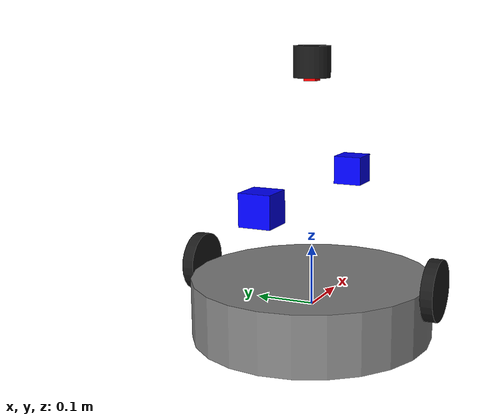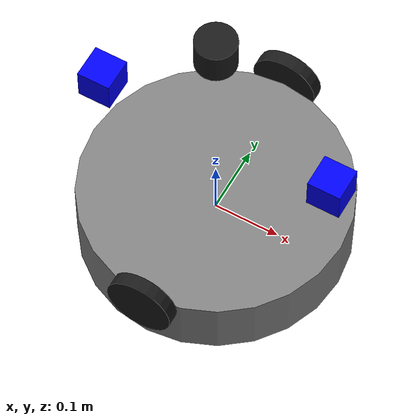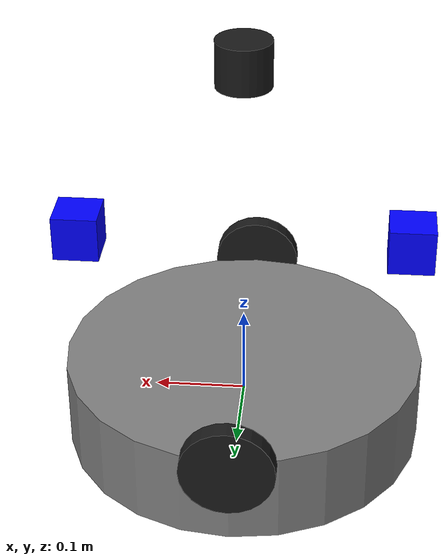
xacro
<?xml version="1.0"?>
<robot xmlns:xacro="http://www.ros.org/wiki/xacro" name="my_robot">

  <!-- Properties -->
  <xacro:property name="PI" value="3.1415926535897931"/>

  <xacro:property name="base_radius" value="0.2"/>      <!-- Base cylinder radius -->
  <xacro:property name="base_height" value="0.1"/>      <!-- Base cylinder height -->

  <xacro:property name="wheel_radius" value="0.05"/>     <!-- Driving wheel radius -->
  <xacro:property name="wheel_thickness" value="0.02"/>   <!-- Driving wheel thickness (length of cylinder) -->
  <xacro:property name="wheel_axle_height_from_ground" value="0.10"/> <!-- Axle Z position from ground -->
  <!-- Assuming base_link bottom is at ground level (z=0 in world), its origin (center) is at base_height/2 from ground. -->
  <!-- Wheel joint Z offset from base_link origin: -->
  <xacro:property name="wheel_joint_z_offset" value="${wheel_axle_height_from_ground - base_height/2.0}"/>
  <!-- Wheel joint Y offset from base_link center to wheel center -->
  <xacro:property name="wheel_joint_y_offset" value="${base_radius + wheel_thickness/2.0}"/> <!-- Place wheel center just outside base radius -->
  <xacro:property name="wheel_separation" value="${2 * wheel_joint_y_offset}"/>
  <xacro:property name="wheel_diameter" value="${2 * wheel_radius}"/>

  <xacro:property name="caster_radius" value="0.025"/>    <!-- Omni-caster wheel radius -->
  <xacro:property name="caster_offset_x" value="${base_radius - caster_radius}"/> <!-- Position caster slightly inside base radius edge -->
  <!-- Caster Z position: want it to support the robot at the same height as driving wheels -->
  <!-- Bottom of driving wheel is at wheel_axle_height_from_ground - wheel_radius = 0.10 - 0.05 = 0.05m from ground -->
  <!-- So caster bottom should also be at 0.05m from ground. Caster center z = 0.05 (from ground) + caster_radius -->
  <!-- Caster Z relative to base_link origin: (0.05 + caster_radius) - base_height/2.0 -->
  <xacro:property name="caster_joint_z_offset" value="${(wheel_axle_height_from_ground - wheel_radius + caster_radius) - base_height/2.0}"/>

  <xacro:property name="camera_size" value="0.05"/>
  <xacro:property name="camera_x_offset" value="0.18"/> <!-- Forward from base center -->
  <xacro:property name="camera_z_offset" value="0.2"/>  <!-- Above base_link origin, as per example -->

  <xacro:property name="lidar_z_offset" value="0.4"/>   <!-- Above base_link origin -->
  <xacro:property name="imu_z_offset" value="0.38"/>    <!-- Above base_link origin -->

  <!-- Materials -->
  <material name="grey">
    <color rgba="0.5 0.5 0.5 1"/>
  </material>
  <material name="black">
    <color rgba="0.1 0.1 0.1 1"/>
  </material>
  <material name="blue">
    <color rgba="0 0 1 1"/>
  </material>
  <material name="red">
    <color rgba="1 0 0 1"/>
  </material>

  <!-- Base Link (origin at geometric center of cylinder) -->
  <link name="base_link">
    <visual>
      <geometry>
        <cylinder radius="${base_radius}" length="${base_height}"/>
      </geometry>
      <material name="grey"/>
    </visual>
    <collision>
      <geometry>
        <cylinder radius="${base_radius}" length="${base_height}"/>
      </geometry>
    </collision>
    <inertial>
      <mass value="5.0"/> <!-- Approximate mass -->
      <origin xyz="0 0 0" rpy="0 0 0"/>
      <inertia ixx="0.0383" ixy="0" ixz="0" iyy="0.0383" iyz="0" izz="0.05"/> <!-- Approx for cylinder m=5, r=0.2, h=0.1 -->
    </inertial>
  </link>

  <!-- Left Drive Wheel -->
  <link name="wheel_left_link">
    <visual>
      <origin rpy="${PI/2} 0 0"/> <!-- Rotate cylinder to align correctly -->
      <geometry>
        <cylinder radius="${wheel_radius}" length="${wheel_thickness}"/>
      </geometry>
      <material name="black"/>
    </visual>
    <collision>
      <origin rpy="${PI/2} 0 0"/>
      <geometry>
        <cylinder radius="${wheel_radius}" length="${wheel_thickness}"/>
      </geometry>
    </collision>
    <inertial>
      <mass value="0.5"/> <!-- Approximate mass -->
      <origin xyz="0 0 0" rpy="${PI/2} 0 0"/> <!-- Origin relative to link frame, consider rotation for inertia tensor -->
      <inertia ixx="0.001" ixy="0" ixz="0" iyy="0.0005" iyz="0" izz="0.001"/> <!-- Approx for cylinder m=0.5, r=0.05, h=0.02, axis of rotation is Y -->
    </inertial>
  </link>

  <joint name="wheel_left_joint" type="continuous">
    <parent link="base_link"/>
    <child link="wheel_left_link"/>
    <origin xyz="0 ${wheel_joint_y_offset} ${wheel_joint_z_offset}" rpy="0 0 0"/>
    <axis xyz="0 1 0"/> <!-- Rotate around Y-axis of the joint frame -->
  </joint>

  <!-- Right Drive Wheel -->
  <link name="wheel_right_link">
    <visual>
      <origin rpy="${PI/2} 0 0"/>
      <geometry>
        <cylinder radius="${wheel_radius}" length="${wheel_thickness}"/>
      </geometry>
      <material name="black"/>
    </visual>
    <collision>
      <origin rpy="${PI/2} 0 0"/>
      <geometry>
        <cylinder radius="${wheel_radius}" length="${wheel_thickness}"/>
      </geometry>
    </collision>
    <inertial>
      <mass value="0.5"/>
      <origin xyz="0 0 0" rpy="${PI/2} 0 0"/>
      <inertia ixx="0.001" ixy="0" ixz="0" iyy="0.0005" iyz="0" izz="0.001"/>
    </inertial>
  </link>

  <joint name="wheel_right_joint" type="continuous">
    <parent link="base_link"/>
    <child link="wheel_right_link"/>
    <origin xyz="0 -${wheel_joint_y_offset} ${wheel_joint_z_offset}" rpy="0 0 0"/>
    <axis xyz="0 1 0"/>
  </joint>

  <!-- Front Caster Wheel (simple sphere for visual) -->
  <link name="caster_front_link">
    <visual>
      <geometry>
        <sphere radius="${caster_radius}"/>
      </geometry>
      <material name="red"/>
    </visual>
    <collision>
      <geometry>
        <sphere radius="${caster_radius}"/>
      </geometry>
    </collision>
    <inertial>
      <mass value="0.1"/>
      <inertia ixx="0.0001" ixy="0" ixz="0" iyy="0.0001" iyz="0" izz="0.0001"/>
    </inertial>
  </link>

  <joint name="caster_front_joint" type="fixed">
    <parent link="base_link"/>
    <child link="caster_front_link"/>
    <origin xyz="${caster_offset_x} 0 ${caster_joint_z_offset}" rpy="0 0 0"/>
  </joint>

  <!-- Rear Caster Wheel (simple sphere for visual) -->
  <link name="caster_rear_link">
    <visual>
      <geometry>
        <sphere radius="${caster_radius}"/>
      </geometry>
      <material name="red"/>
    </visual>
    <collision>
      <geometry>
        <sphere radius="${caster_radius}"/>
      </geometry>
    </collision>
    <inertial>
      <mass value="0.1"/>
      <inertia ixx="0.0001" ixy="0" ixz="0" iyy="0.0001" iyz="0" izz="0.0001"/>
    </inertial>
  </link>

  <joint name="caster_rear_joint" type="fixed">
    <parent link="base_link"/>
    <child link="caster_rear_link"/>
    <origin xyz="-${caster_offset_x} 0 ${caster_joint_z_offset}" rpy="0 0 0"/>
  </joint>

  <!-- Front Camera -->
  <link name="camera_front_link">
    <visual>
      <geometry>
        <box size="${camera_size} ${camera_size} ${camera_size}"/>
      </geometry>
      <material name="blue"/>
    </visual>
    <!-- Collision and inertial omitted for simplicity for now -->
  </link>

  <joint name="camera_front_joint" type="fixed">
    <parent link="base_link"/>
    <child link="camera_front_link"/>
    <origin xyz="${camera_x_offset} 0 ${camera_z_offset}" rpy="0 0 0"/>
  </joint>

  <!-- Rear Camera -->
  <link name="camera_rear_link">
    <visual>
      <geometry>
        <box size="${camera_size} ${camera_size} ${camera_size}"/>
      </geometry>
      <material name="blue"/>
    </visual>
  </link>

  <joint name="camera_rear_joint" type="fixed">
    <parent link="base_link"/>
    <child link="camera_rear_link"/>
    <origin xyz="-${camera_x_offset} 0 ${camera_z_offset}" rpy="0 0 ${PI}"/> <!-- Rotated 180 deg to face rear -->
  </joint>

  <!-- LiDAR -->
  <link name="lidar_link">
    <visual> <!-- Optional visual for LiDAR -->
      <geometry>
        <cylinder radius="0.03" length="0.05"/>
      </geometry>
      <material name="black"/>
    </visual>
  </link>

  <joint name="lidar_joint" type="fixed">
    <parent link="base_link"/>
    <child link="lidar_link"/>
    <origin xyz="0 0 ${lidar_z_offset}" rpy="0 0 0"/>
  </joint>

  <!-- IMU -->
  <link name="imu_link">
    <!-- IMU often has no visual or a very small one -->
     <visual>
      <geometry>
        <box size="0.02 0.02 0.02"/>
      </geometry>
      <material name="red"/>
    </visual>
  </link>

  <joint name="imu_joint" type="fixed">
    <parent link="base_link"/>
    <child link="imu_link"/>
    <origin xyz="0 0 ${imu_z_offset}" rpy="0 0 0"/>
  </joint>

  <!-- Gazebo Plugins -->

  <!-- Differential Drive -->
  <gazebo>
    <plugin name="differential_drive_controller" filename="libgazebo_ros_diff_drive.so">
      <ros>
        <namespace>/</namespace>
      </ros>
      <left_joint>wheel_left_joint</left_joint>
      <right_joint>wheel_right_joint</right_joint>
      <wheel_separation>${wheel_separation}</wheel_separation>
      <wheel_diameter>${wheel_diameter}</wheel_diameter>
      <max_wheel_torque>20</max_wheel_torque>
      <max_wheel_acceleration>1.0</max_wheel_acceleration>
      <odometry_frame>odom</odometry_frame>
      <robot_base_frame>base_link</robot_base_frame>
      <publish_odom>true</publish_odom>
      <publish_odom_tf>true</publish_odom_tf>
      <publish_wheel_tf>false</publish_wheel_tf> <!-- Often handled by robot_state_publisher -->
    </plugin>
  </gazebo>

  <!-- Front Depth Camera -->
  <gazebo reference="camera_front_link">
    <sensor type="depth" name="front_depth_camera_sensor">
      <always_on>true</always_on>
      <update_rate>15.0</update_rate>
      <camera name="camera_front">
        <horizontal_fov>${60.0*PI/180.0}</horizontal_fov>
        <image>
          <width>640</width>
          <height>480</height>
          <format>R8G8B8</format>
        </image>
        <clip>
          <near>0.1</near>
          <far>10.0</far>
        </clip>
      </camera>
      <plugin name="front_camera_plugin" filename="libgazebo_ros_depth_camera.so">
        <ros>
            <namespace>/my_robot</namespace>
            <remapping>image_raw:=camera_front/image_raw</remapping>
            <remapping>camera_info:=camera_front/camera_info</remapping>
            <remapping>points:=camera_front/points</remapping>
        </ros>
        <camera_name>camera_front</camera_name>
        <frame_name>camera_front_link_optical</frame_name>
        <hack_baseline>0.07</hack_baseline>
        <min_depth>0.1</min_depth>
        <max_depth>10.0</max_depth>
        <point_cloud_cutoff>0.1</point_cloud_cutoff>
        <point_cloud_cutoff_max>10.0</point_cloud_cutoff_max>
      </plugin>
    </sensor>
    <!-- Add optical frame joint -->
    <joint name="camera_front_optical_joint" type="fixed">
      <parent link="camera_front_link" />
      <child link="camera_front_link_optical" />
      <origin xyz="0 0 0" rpy="${-PI/2} 0 ${-PI/2}"/>
    </joint>
    <link name="camera_front_link_optical"/>
  </gazebo>

  <!-- Rear Depth Camera -->
  <gazebo reference="camera_rear_link">
    <sensor type="depth" name="rear_depth_camera_sensor">
      <always_on>true</always_on>
      <update_rate>15.0</update_rate>
      <camera name="camera_rear">
        <horizontal_fov>${60.0*PI/180.0}</horizontal_fov>
        <image>
          <width>640</width>
          <height>480</height>
          <format>R8G8B8</format>
        </image>
        <clip>
          <near>0.1</near>
          <far>10.0</far>
        </clip>
      </camera>
      <plugin name="rear_camera_plugin" filename="libgazebo_ros_depth_camera.so">
        <ros>
            <namespace>/my_robot</namespace>
            <remapping>image_raw:=camera_rear/image_raw</remapping>
            <remapping>camera_info:=camera_rear/camera_info</remapping>
            <remapping>points:=camera_rear/points</remapping>
        </ros>
        <camera_name>camera_rear</camera_name>
        <frame_name>camera_rear_link_optical</frame_name>
        <hack_baseline>0.07</hack_baseline>
        <min_depth>0.1</min_depth>
        <max_depth>10.0</max_depth>
        <point_cloud_cutoff>0.1</point_cloud_cutoff>
        <point_cloud_cutoff_max>10.0</point_cloud_cutoff_max>
      </plugin>
    </sensor>
    <!-- Add optical frame joint -->
    <joint name="camera_rear_optical_joint" type="fixed">
      <parent link="camera_rear_link" />
      <child link="camera_rear_link_optical" />
      <origin xyz="0 0 0" rpy="${-PI/2} 0 ${-PI/2}"/>
    </joint>
    <link name="camera_rear_link_optical"/>
  </gazebo>

  <!-- LiDAR -->
  <gazebo reference="lidar_link">
    <sensor type="ray" name="lidar_sensor">
      <pose>0 0 0 0 0 0</pose>
      <visualize>false</visualize>
      <update_rate>10</update_rate>
      <ray>
        <scan>
          <horizontal>
            <samples>360</samples>
            <resolution>1</resolution>
            <min_angle>-${PI}</min_angle>
            <max_angle>${PI}</max_angle>
          </horizontal>
        </scan>
        <range>
          <min>0.12</min>
          <max>10.0</max>
          <resolution>0.01</resolution>
        </range>
        <noise>
          <type>gaussian</type>
          <mean>0.0</mean>
          <stddev>0.01</stddev>
        </noise>
      </ray>
      <plugin name="lidar_plugin" filename="libgazebo_ros_ray_sensor.so">
        <ros>
            <namespace>/my_robot</namespace>
            <remapping>~/out:=scan</remapping>
        </ros>
        <output_type>sensor_msgs/LaserScan</output_type>
        <frame_name>lidar_link</frame_name>
      </plugin>
    </sensor>
  </gazebo>

  <!-- IMU -->
  <gazebo reference="imu_link">
    <sensor type="imu" name="imu_sensor">
      <always_on>true</always_on>
      <update_rate>100</update_rate>
      <imu>
        <angular_velocity>
          <x>
            <noise type="gaussian">
              <mean>0.0</mean>
              <stddev>2e-4</stddev>
            </noise>
          </x>
          <y>
            <noise type="gaussian">
              <mean>0.0</mean>
              <stddev>2e-4</stddev>
            </noise>
          </y>
          <z>
            <noise type="gaussian">
              <mean>0.0</mean>
              <stddev>2e-4</stddev>
            </noise>
          </z>
        </angular_velocity>
        <linear_acceleration>
          <x>
            <noise type="gaussian">
              <mean>0.0</mean>
              <stddev>1.7e-2</stddev>
            </noise>
          </x>
          <y>
            <noise type="gaussian">
              <mean>0.0</mean>
              <stddev>1.7e-2</stddev>
            </noise>
          </y>
          <z>
            <noise type="gaussian">
              <mean>0.0</mean>
              <stddev>1.7e-2</stddev>
            </noise>
          </z>
        </linear_acceleration>
      </imu>
      <plugin name="imu_plugin" filename="libgazebo_ros_imu_sensor.so">
        <ros>
            <namespace>/my_robot</namespace>
            <remapping>~/out:=imu/data</remapping>
        </ros>
        <initial_orientation_as_reference>false</initial_orientation_as_reference>
        <frame_id>imu_link</frame_id> <!-- Gazebo Rosalind expects frame_id, not frame_name -->
      </plugin>
    </sensor>
  </gazebo>

</robot>
